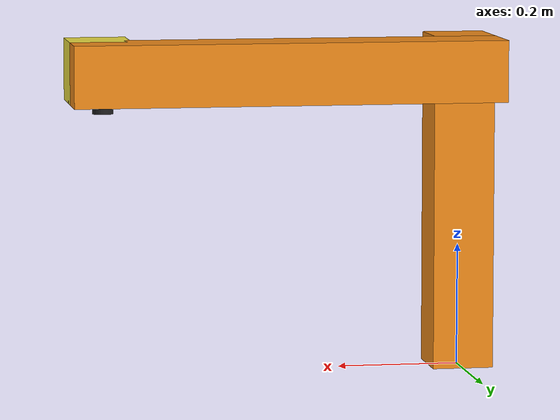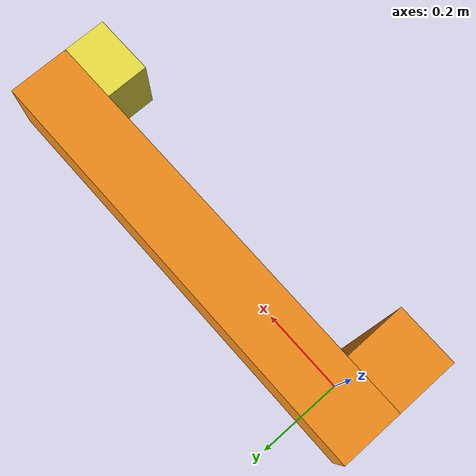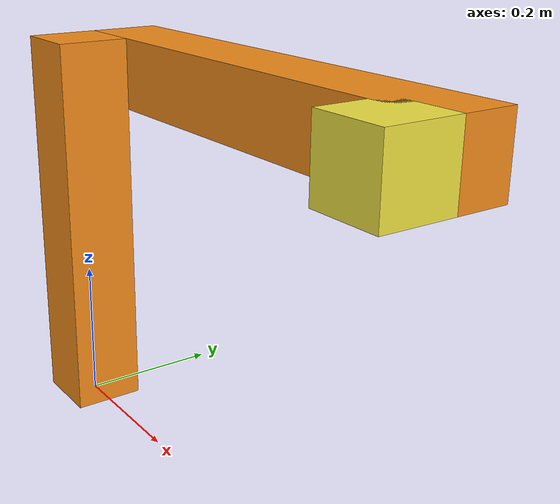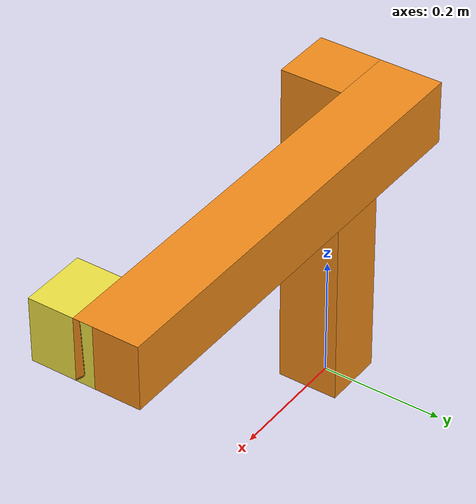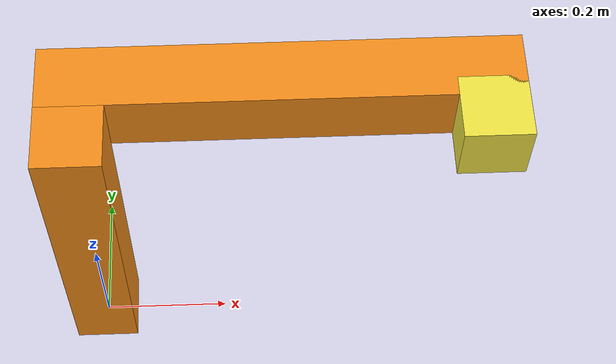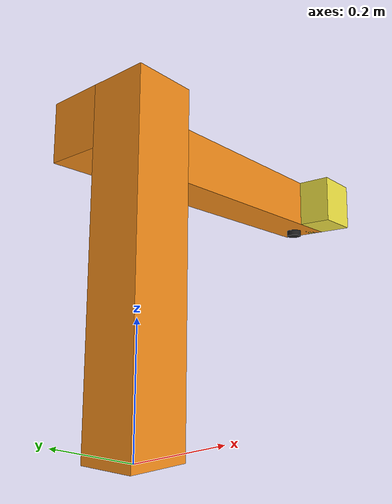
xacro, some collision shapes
<?xml version="1.0"?>
<!-- Revolute-Revolute Manipulator -->
<robot name="rrbot" xmlns:xacro="http://www.ros.org/wiki/xacro">

  <!-- Constants for robot dimensions -->
  <xacro:property name="PI" value="3.1415926535897931"/>
  <xacro:property name="mass" value="1" /> <!-- arbitrary value for mass -->
  <xacro:property name="width" value="0.1" /> <!-- Square dimensions (widthxwidth) of beams -->
  <xacro:property name="height1" value="0.55" /> <!-- Link 1 -->
  <xacro:property name="height3" value="0.7" /> <!-- Link 3 -->
  <xacro:property name="camera_link" value="0.05" /> <!-- Size of square 'camera' box -->
  <xacro:property name="axel_offset" value="0.05" /> <!-- Space btw top of beam and the each joint -->

  <!-- Import all Gazebo-customization elements, including Gazebo colors -->
  <xacro:include filename="$(find rrbot_description)/urdf/rrbot.gazebo" />
  <!-- Import Rviz colors -->
  <xacro:include filename="$(find rrbot_description)/urdf/materials.xacro" />

  <!-- Used for fixing robot to Gazebo 'base_link' -->
  <link name="world"/>

  <joint name="fixed" type="fixed">
    <parent link="world"/>
    <child link="base_link"/>
  </joint>

  <!-- Base Link -->
  <link name="base_link">
    <collision>
      <origin xyz="0 0 ${height1/2}" rpy="0 0 0"/>
      <geometry>
	<box size="${width} ${width} ${height1}"/>
      </geometry>
    </collision>

    <visual>
      <origin xyz="0 0 ${height1/2}" rpy="0 0 0"/>
      <geometry>
	<box size="${width} ${width} ${height1}"/>
      </geometry>
      <material name="orange"/>
    </visual>

    <inertial>
      <origin xyz="0 0 ${height1/2}" rpy="0 0 0"/>
      <mass value="${mass}"/>
      <inertia
	  ixx="${mass / 12.0 * (width*width + height1*height1)}" ixy="0.0" ixz="0.0"
	  iyy="${mass / 12.0 * (height1*height1 + width*width)}" iyz="0.0"
	  izz="${mass / 12.0 * (width*width + width*width)}"/>
    </inertial>
  </link>

  <joint name="joint1" type="fixed">
    <parent link="base_link"/>
    <child link="link3"/>
    <origin xyz="0 ${width} ${height1 - axel_offset}" rpy="0 1.5708 0"/>
    <axis xyz="0 1 0"/>
    <dynamics damping="0.7"/>
  </joint>

  <!-- Middle Link -->

  <!-- Top Link -->
  <link name="link3">
    <collision>
      <origin xyz="0 0 ${height3/2 - axel_offset}" rpy="0 0 0"/>
      <geometry>
	<box size="${width} ${width} ${height3}"/>
      </geometry>
    </collision>

    <visual>
      <origin xyz="0 0 ${height3/2 - axel_offset}" rpy="0 0 0"/>
      <geometry>
	<box size="${width} ${width} ${height3}"/>
      </geometry>
      <material name="orange"/>
    </visual>

    <inertial>
      <origin xyz="0 0 ${height3/2 - axel_offset}" rpy="0 0 0"/>
      <mass value="${mass}"/>
      <inertia
	  ixx="${mass / 12.0 * (width*width + height3*height3)}" ixy="0.0" ixz="0.0"
	  iyy="${mass / 12.0 * (height3*height3 + width*width)}" iyz="0.0"
	  izz="${mass / 12.0 * (width*width + width*width)}"/>
    </inertial>
  </link>

  <joint name="hokuyo_joint" type="fixed">
    <axis xyz="0 1 0" />
    <origin xyz="0 ${-axel_offset-0.02} ${height3 - axel_offset*2}" rpy="1.5708 0 0"/>
    <parent link="link3"/>
    <child link="hokuyo_link"/>
  </joint>

  <!-- Hokuyo Laser -->
  <link name="hokuyo_link">
    <collision>
      <origin xyz="0 0 0" rpy="0 0 0"/>
      <geometry>
	<box size="0.1 0.1 0.1"/>
      </geometry>
    </collision>

    <visual>
      <origin xyz="0 0 0" rpy="0 0 0"/>
      <geometry>
        <mesh filename="package://rrbot_description/meshes/hokuyo.dae"/>
      </geometry>
    </visual>

    <inertial>
      <mass value="1e-5" />
      <origin xyz="0 0 0" rpy="0 0 0"/>
      <inertia ixx="1e-6" ixy="0" ixz="0" iyy="1e-6" iyz="0" izz="1e-6" />
    </inertial>
  </link>

  <joint name="camera_joint" type="fixed">
    <axis xyz="0 1 0" />
    <origin xyz="${camera_link} 0 ${height3 - axel_offset*2}" rpy="0 0 0"/>
    <parent link="link3"/>
    <child link="camera_link"/>
  </joint>

  <!-- Camera -->
  <link name="camera_link">
    <collision>
      <origin xyz="0 0 0" rpy="0 0 0"/>
      <geometry>
	<box size="${camera_link} ${camera_link} ${camera_link}"/>
      </geometry>
    </collision>

    <visual>
      <origin xyz="0 0 0" rpy="0 ${PI/2} 0"/>
      <geometry>
	<cylinder radius="${camera_link/3}" length="${camera_link/2}"/>
      </geometry>
      <material name="black"/>
    </visual>

    <inertial>
      <mass value="1e-5" />
      <origin xyz="0 0 0" rpy="0 0 0"/>
      <inertia ixx="1e-6" ixy="0" ixz="0" iyy="1e-6" iyz="0" izz="1e-6" />
    </inertial>
  </link>

  <!-- generate an optical frame http://www.ros.org/reps/rep-0103.html#suffix-frames
      so that ros and opencv can operate on the camera frame correctly -->
  <joint name="camera_optical_joint" type="fixed">
    <!-- these values have to be these values otherwise the gazebo camera image
        won't be aligned properly with the frame it is supposedly originating from -->
    <origin xyz="0 0 0" rpy="${-pi/2} 0 ${-pi/2}"/>
    <parent link="camera_link"/>
    <child link="camera_link_optical"/>
  </joint>

  <link name="camera_link_optical">
  </link>

</robot>
